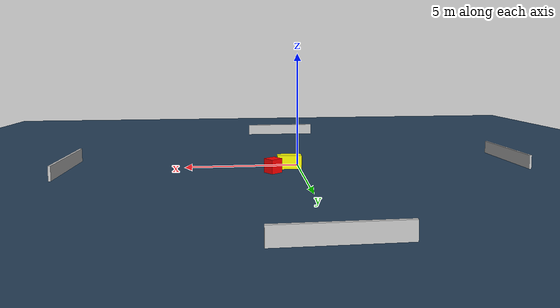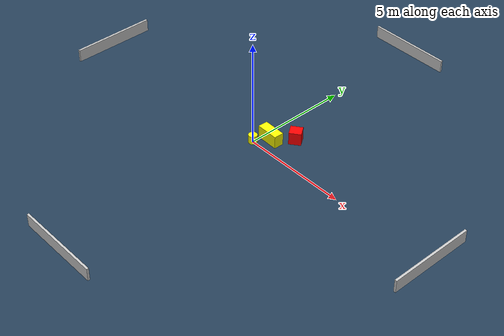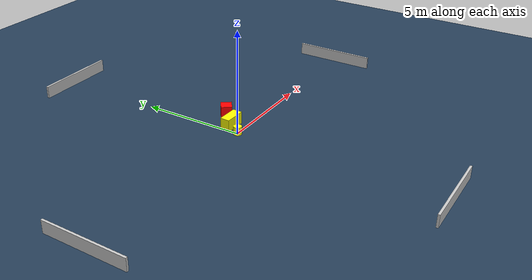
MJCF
<?xml version="1.0" ?>
<mujoco model="generated_environment">
  <option timestep="0.01" integrator="RK4" cone="elliptic"/>
  <default>
    <geom density="1"/>
  </default>
  <asset>
    <texture builtin="gradient" height="3072" name="skybox" rgb1="0.3 0.5 0.7" rgb2="0 0 0" type="skybox" width="512"/>
    <texture builtin="checker" height="300" name="groundplane" rgb1="0.2 0.3 0.4" rgb2="0.1 0.2 0.3" type="2d" width="300"/>
    <material name="groundplane" reflectance="0.2" texrepeat="5 5" texture="groundplane"/>
  </asset>
  <worldbody>
    <light dir="0 0 -1" directional="true" pos="0 0 1.5"/>
    <geom condim="3" friction="0.5 0.005 0.001" material="groundplane" name="floor" pos="0 0 0" size="0 0 0.05" type="plane"/>
    <body name="walls">
      <geom name="wall_1" condim="4" pos="-10.0 0.0 0.3" rgba="0.800000011920929 0.800000011920929 0.800000011920929 1.0" size="0.05 2.0 0.3" type="box"/>
      <geom name="wall_2" condim="4" pos="10.0 0.0 0.3" rgba="0.800000011920929 0.800000011920929 0.800000011920929 1.0" size="0.05 2.0 0.3" type="box"/>
      <geom name="wall_3" condim="4" pos="0.0 -10.0 0.3" rgba="0.800000011920929 0.800000011920929 0.800000011920929 1.0" size="2.0 0.05 0.3" type="box"/>
      <geom name="wall_4" condim="4" pos="0.0 10.0 0.3" rgba="0.800000011920929 0.800000011920929 0.800000011920929 1.0" size="2.0 0.05 0.3" type="box"/>
    </body>
    <body name="robot">
      <joint name="joint_x" type="slide" pos="0 0 0" axis="1 0 0"/>
      <joint name="joint_y" type="slide" pos="0 0 0" axis="0 1 0"/>
      <geom name="robot" type="cylinder" pos="0.0 0.0 0.2" size="0.2 0.2 0.0" mass="5.0" friction="1.0 0.005 0.0001" condim="4" rgba="1.0 1.0 0.0 1.0"/>
    </body>
    <body name="obstacle_1_movable">
      <geom name="obstacle_1_movable" condim="4" pos="0.44458393471861346 0.6320182851258654 0.3" euler="0 0 268.26883664357143" friction="0.0 0.005 0.001" rgba="1.0 1.0 0.0 1.0" size="0.2295090977289135 0.5258229689020799 0.3" type="box" mass="0.1"/>
      <joint type="free"/>
    </body>
    <body name="obstacle_2_static">
      <geom name="obstacle_2_static" condim="4" pos="1.1976231030016187 1.4015150060232984 0.3" euler="0 0 126.3018309909945" friction="0.0 0.005 0.001" rgba="1.0 0.0 0.0 1.0" size="0.2631196170032658 0.2766554928298397 0.3" type="box"/>
    </body>
  </worldbody>
  <actuator>
    <motor name="actuator_x" joint="joint_x" gear="1" ctrlrange="-1 1"/>
    <motor name="actuator_y" joint="joint_y" gear="1" ctrlrange="-1 1"/>
  </actuator>
</mujoco>
